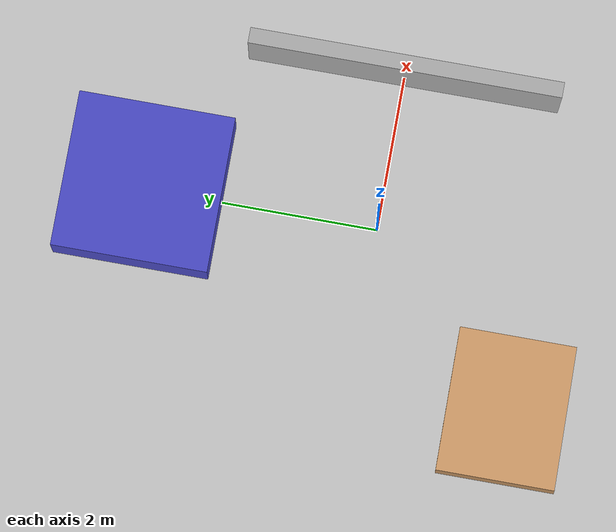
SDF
<?xml version="1.0" ?>
<sdf version="1.6">
  <world name="group_project_world">

    <!-- Physics -->
    <physics type="ode">
      <max_step_size>0.001</max_step_size>
      <real_time_factor>1.0</real_time_factor>
      <real_time_update_rate>1000</real_time_update_rate>
    </physics>

    <!-- Lighting -->
    <include>
      <uri>model://sun</uri>
    </include>

    <!-- Ground -->
    <include>
      <uri>model://ground_plane</uri>
    </include>

    <!-- Scene -->
    <scene>
      <ambient>0.5 0.5 0.5 1</ambient>
      <background>0.8 0.9 1.0 1</background>
      <shadows>true</shadows>
    </scene>

    <!-- STATIC OBSTACLE 1: Wall -->
    <model name="wall_1">
      <static>true</static>
      <pose>2 0 0.5 0 0 0</pose>
      <link name="link">
        <collision name="collision">
          <geometry>
            <box>
              <size>0.2 4.0 1.0</size>
            </box>
          </geometry>
        </collision>
        <visual name="visual">
          <geometry>
            <box>
              <size>0.2 4.0 1.0</size>
            </box>
          </geometry>
          <material>
            <ambient>0.7 0.7 0.7 1</ambient>
            <diffuse>0.7 0.7 0.7 1</diffuse>
          </material>
        </visual>
      </link>
    </model>

    <!-- STATIC OBSTACLE 2: Ramp -->
    <model name="ramp_1">
      <static>true</static>
      <pose>-2 -2 0.25 0 0.3 0</pose>
      <link name="link">
        <collision name="collision">
          <geometry>
            <box>
              <size>2.0 1.5 0.1</size>
            </box>
          </geometry>
        </collision>
        <visual name="visual">
          <geometry>
            <box>
              <size>2.0 1.5 0.1</size>
            </box>
          </geometry>
          <material>
            <ambient>0.8 0.6 0.4 1</ambient>
            <diffuse>0.8 0.6 0.4 1</diffuse>
          </material>
        </visual>
      </link>
    </model>

    <!-- STATIC OBSTACLE 3: Platform -->
    <model name="platform_1">
      <static>true</static>
      <pose>0 3 0.3 0 0 0</pose>
      <link name="link">
        <collision name="collision">
          <geometry>
            <box>
              <size>2.0 2.0 0.6</size>
            </box>
          </geometry>
        </collision>
        <visual name="visual">
          <geometry>
            <box>
              <size>2.0 2.0 0.6</size>
            </box>
          </geometry>
          <material>
            <ambient>0.3 0.3 0.8 1</ambient>
            <diffuse>0.3 0.3 0.8 1</diffuse>
          </material>
        </visual>
      </link>
    </model>

  </world>
</sdf>
